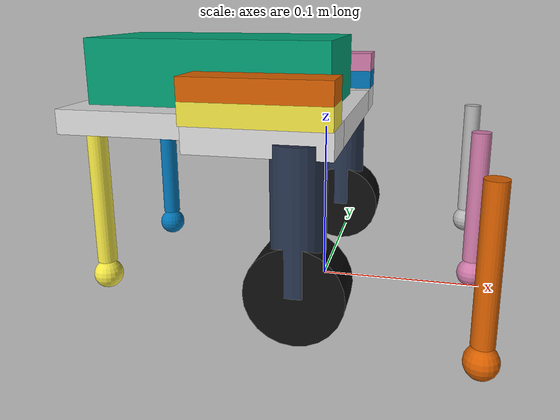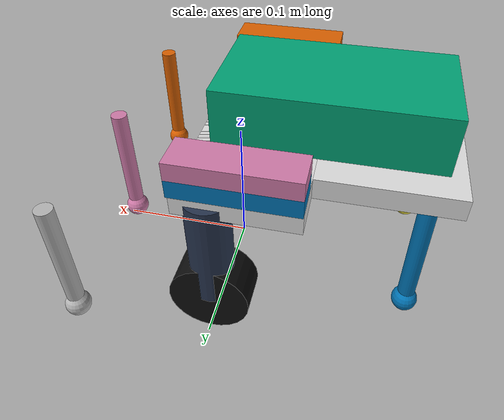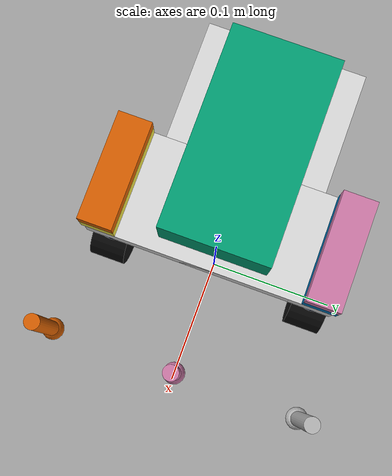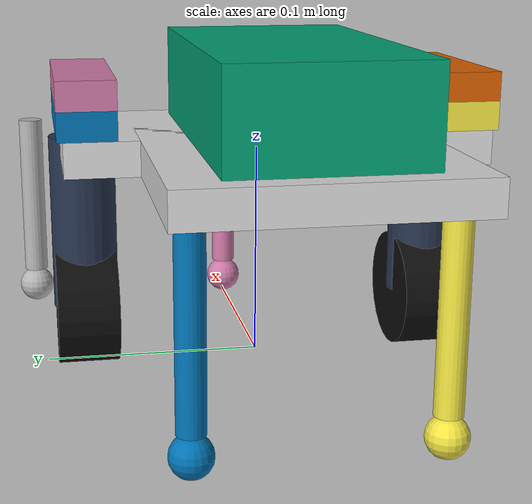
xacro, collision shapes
<?xml version="1.0"?>
<robot name="swerve_robot" xmlns:xacro="http://www.ros.org/wiki/xacro">

  <xacro:include filename="$(find swerve_robot_description)/urdf/modulo_swerve.xacro" />
  <xacro:include filename="$(find swerve_robot_description)/urdf/swerve_robot.gazebo.xacro" />

  <!-- Medidas del prototipo (en metros) -->
  <xacro:property name="track_width" value="0.163" />          <!-- distancia entre ejes de dirección -->
  <xacro:property name="wheelbase" value="0.131" />            <!-- distancia del origen a los apoyos traseros -->
  <xacro:property name="separacion_balines" value="0.10" />    <!-- distancia entre apoyos traseros -->
  <xacro:property name="radio_rueda" value="0.0275" />
  <!-- Distancia vertical del pivote de dirección al eje de la rueda.
       Se obtuvo de la altura mesa-engranaje de 56 dientes (10.8 cm) menos
       el radio de la rueda. -->
  <xacro:property name="alto_modulo" value="0.0805" />

  <!-- Los apoyos delanteros solo existen en el prototipo, se agregaron para
       que el chasis no se inclinara hacia adelante. No forman parte de la
       plataforma final. -->
  <xacro:arg name="balines_delanteros" default="true" />
  <xacro:property name="balines_del_x" value="0.095" />        <!-- adelante del origen -->
  <xacro:property name="balines_del_y" value="0.1045" />       <!-- track_width/2 + 0.023 -->

  <xacro:arg name="usar_mallas" default="true" />
  <xacro:property name="ruta_mallas" value="file://$(find swerve_robot_description)/meshes" />

  <!-- Chasis. Las dimensiones son aproximadas y la masa corresponde solo a
       la estructura, porque el bloque de control y los motores se modelan
       aparte. -->
  <xacro:property name="chasis_alto" value="0.015" />
  <xacro:property name="chasis_largo" value="${wheelbase + 0.04}" />
  <xacro:property name="chasis_ancho" value="${track_width + 0.02}" />
  <xacro:property name="chasis_cabeza_largo" value="0.08" />   <!-- parte ancha delantera, cubre el largo del motor -->
  <xacro:property name="chasis_columna_ancho" value="0.12" />  <!-- parte angosta trasera, llega hasta los apoyos -->
  <xacro:property name="masa_chasis" value="0.12" />

  <!-- Masas de los componentes según el catálogo del fabricante -->
  <xacro:property name="masa_ev3" value="0.215" />             <!-- bloque de control -->
  <xacro:property name="masa_motor" value="0.085" />           <!-- cada uno de los 4 motores -->

  <xacro:property name="radio_balin" value="0.009" />
  <xacro:property name="masa_balin" value="0.024" />
  <xacro:property name="mu_balin" value="0.01" />

  <link name="base_footprint" />

  <joint name="base_footprint_joint" type="fixed">
    <parent link="base_footprint" />
    <child link="base_link" />
    <origin xyz="0 0 ${radio_rueda + alto_modulo}" rpy="0 0 0" />
  </joint>

  <!-- Chasis en forma de T. Con mallas, chasis.dae incluye la estructura,
       el bloque de control, los motores y los apoyos traseros. -->
  <link name="base_link">
    <xacro:if value="$(arg usar_mallas)">
      <visual>
        <geometry>
          <mesh filename="${ruta_mallas}/chasis.dae" />
        </geometry>
        <material name="gris_claro_chasis">
          <color rgba="0.85 0.85 0.85 1.0" />
        </material>
      </visual>
      <xacro:if value="$(arg balines_delanteros)">
        <visual>
          <geometry>
            <mesh filename="${ruta_mallas}/apoyos.dae" />
          </geometry>
          <material name="gris_balin">
            <color rgba="0.4 0.4 0.4 1.0" />
          </material>
        </visual>
      </xacro:if>
    </xacro:if>

    <!-- Parte ancha delantera -->
    <xacro:unless value="$(arg usar_mallas)">
      <visual>
        <origin xyz="${0.02 - chasis_cabeza_largo/2} 0 0" rpy="0 0 0" />
        <geometry>
          <box size="${chasis_cabeza_largo} ${chasis_ancho} ${chasis_alto}" />
        </geometry>
        <material name="azul_chasis">
          <color rgba="0.3 0.4 0.55 1.0" />
        </material>
      </visual>
    </xacro:unless>
    <collision>
      <origin xyz="${0.02 - chasis_cabeza_largo/2} 0 0" rpy="0 0 0" />
      <geometry>
        <box size="${chasis_cabeza_largo} ${chasis_ancho} ${chasis_alto}" />
      </geometry>
    </collision>

    <!-- Parte angosta trasera -->
    <xacro:unless value="$(arg usar_mallas)">
      <visual>
        <origin xyz="${-wheelbase/2} 0 0" rpy="0 0 0" />
        <geometry>
          <box size="${chasis_largo} ${chasis_columna_ancho} ${chasis_alto}" />
        </geometry>
        <material name="azul_chasis">
          <color rgba="0.3 0.4 0.55 1.0" />
        </material>
      </visual>
    </xacro:unless>
    <collision>
      <origin xyz="${-wheelbase/2} 0 0" rpy="0 0 0" />
      <geometry>
        <box size="${chasis_largo} ${chasis_columna_ancho} ${chasis_alto}" />
      </geometry>
    </collision>

    <!-- Inercia aproximada con el rectángulo que envuelve la T -->
    <inertial>
      <origin xyz="${-wheelbase/2} 0 0" rpy="0 0 0" />
      <mass value="${masa_chasis}" />
      <inertia
        ixx="${masa_chasis/12.0 * (chasis_ancho*chasis_ancho + chasis_alto*chasis_alto)}"
        iyy="${masa_chasis/12.0 * (chasis_largo*chasis_largo + chasis_alto*chasis_alto)}"
        izz="${masa_chasis/12.0 * (chasis_largo*chasis_largo + chasis_ancho*chasis_ancho)}"
        ixy="0" ixz="0" iyz="0" />
    </inertial>
  </link>

  <!-- Bloque de control, apoyado sobre el chasis. Dimensiones y posición
       aproximadas. -->
  <link name="ev3_link">
    <xacro:unless value="$(arg usar_mallas)">
      <visual>
        <geometry>
          <box size="0.15 0.08 0.04" />
        </geometry>
        <material name="blanco_ev3">
          <color rgba="0.92 0.92 0.85 1.0" />
        </material>
      </visual>
    </xacro:unless>
    <collision>
      <geometry>
        <box size="0.15 0.08 0.04" />
      </geometry>
    </collision>
    <inertial>
      <mass value="${masa_ev3}" />
      <inertia
        ixx="${masa_ev3/12.0 * (0.08*0.08 + 0.04*0.04)}"
        iyy="${masa_ev3/12.0 * (0.15*0.15 + 0.04*0.04)}"
        izz="${masa_ev3/12.0 * (0.15*0.15 + 0.08*0.08)}"
        ixy="0" ixz="0" iyz="0" />
    </inertial>
  </link>

  <joint name="ev3_joint" type="fixed">
    <parent link="base_link" />
    <child link="ev3_link" />
    <origin xyz="${-wheelbase/2} 0 ${chasis_alto/2 + 0.02}" rpy="0 0 0" />
  </joint>

  <xacro:property name="motor_largo" value="0.08" />
  <xacro:property name="motor_ancho" value="0.025" />
  <xacro:property name="motor_alto" value="0.0125" />
  <xacro:property name="motor_x_offset" value="-0.02" />       <!-- hacia el centro del chasis -->

  <xacro:macro name="motor_fijo" params="prefix xyz">
    <link name="${prefix}_link">
      <xacro:unless value="$(arg usar_mallas)">
        <visual>
          <geometry>
            <box size="${motor_largo} ${motor_ancho} ${motor_alto}" />
          </geometry>
          <material name="azul_blanco_motor">
            <color rgba="0.5 0.55 0.6 1.0" />
          </material>
        </visual>
      </xacro:unless>
      <collision>
        <geometry>
          <box size="${motor_largo} ${motor_ancho} ${motor_alto}" />
        </geometry>
      </collision>
      <inertial>
        <mass value="${masa_motor}" />
        <inertia ixx="0.00001" ixy="0" ixz="0" iyy="0.00001" iyz="0" izz="0.00001" />
      </inertial>
    </link>
    <joint name="${prefix}_joint" type="fixed">
      <parent link="base_link" />
      <child link="${prefix}_link" />
      <origin xyz="${xyz}" rpy="0 0 0" />
    </joint>
  </xacro:macro>

  <xacro:motor_fijo prefix="der_motor_direccion" xyz="${motor_x_offset} ${-track_width/2} ${chasis_alto/2+motor_alto/2}" />
  <xacro:motor_fijo prefix="izq_motor_direccion" xyz="${motor_x_offset} ${track_width/2}  ${chasis_alto/2+motor_alto/2}" />
  <xacro:motor_fijo prefix="der_motor_traccion"  xyz="${motor_x_offset} ${-track_width/2} ${chasis_alto/2+motor_alto/2+motor_alto}" />
  <xacro:motor_fijo prefix="izq_motor_traccion"  xyz="${motor_x_offset} ${track_width/2}  ${chasis_alto/2+motor_alto/2+motor_alto}" />

  <!-- Módulos swerve, uno a cada lado del origen -->
  <xacro:modulo_swerve prefix="der" reflect="1" parent="base_link" radio_rueda="${radio_rueda}" alto_modulo="${alto_modulo}"
                       malla_pivote="pivote_derecho.dae" malla_rueda="rueda_derecha.dae">
    <origin xyz="0 ${-track_width/2} 0" rpy="0 0 0" />
  </xacro:modulo_swerve>

  <xacro:modulo_swerve prefix="izq" reflect="-1" parent="base_link" radio_rueda="${radio_rueda}" alto_modulo="${alto_modulo}"
                       malla_pivote="pivote_izquierdo.dae" malla_rueda="rueda_izquierda.dae">
    <origin xyz="0 ${track_width/2} 0" rpy="0 0 0" />
  </xacro:modulo_swerve>

  <!-- Apoyo pasivo: esfera en contacto con el piso y una pata que la une
       con la cara inferior del chasis. No participa en la cinemática, solo
       sostiene el chasis. -->
  <xacro:macro name="balin_pasivo" params="prefix xyz">
    <xacro:property name="pata_radio" value="0.006" />
    <xacro:property name="pata_largo" value="${radio_rueda + alto_modulo - chasis_alto/2 - 2*radio_balin}" />

    <link name="${prefix}_balin_link">
      <xacro:unless value="$(arg usar_mallas)">
        <visual>
          <geometry>
            <sphere radius="${radio_balin}" />
          </geometry>
          <material name="gris_balin">
            <color rgba="0.4 0.4 0.4 1.0" />
          </material>
        </visual>
      </xacro:unless>
      <collision>
        <geometry>
          <sphere radius="${radio_balin}" />
        </geometry>
      </collision>
      <xacro:unless value="$(arg usar_mallas)">
        <visual>
          <origin xyz="0 0 ${radio_balin + pata_largo/2}" rpy="0 0 0" />
          <geometry>
            <cylinder radius="${pata_radio}" length="${pata_largo}" />
          </geometry>
          <material name="gris_balin">
            <color rgba="0.4 0.4 0.4 1.0" />
          </material>
        </visual>
      </xacro:unless>
      <collision>
        <origin xyz="0 0 ${radio_balin + pata_largo/2}" rpy="0 0 0" />
        <geometry>
          <cylinder radius="${pata_radio}" length="${pata_largo}" />
        </geometry>
      </collision>
      <!-- Esfera maciza: I = 2/5 m r^2 -->
      <inertial>
        <mass value="${masa_balin}" />
        <inertia ixx="${0.4*masa_balin*radio_balin*radio_balin}" ixy="0" ixz="0"
                 iyy="${0.4*masa_balin*radio_balin*radio_balin}" iyz="0"
                 izz="${0.4*masa_balin*radio_balin*radio_balin}" />
      </inertial>
    </link>
    <gazebo reference="${prefix}_balin_link">
      <mu1>${mu_balin}</mu1>
      <mu2>${mu_balin}</mu2>
    </gazebo>
    <joint name="${prefix}_balin_joint" type="fixed">
      <parent link="base_link" />
      <child link="${prefix}_balin_link" />
      <origin xyz="${xyz}" rpy="0 0 0" />
    </joint>
  </xacro:macro>

  <!-- Apoyos traseros -->
  <xacro:balin_pasivo prefix="balin_der" xyz="${-wheelbase} ${-separacion_balines/2} ${-(radio_rueda+alto_modulo)+radio_balin}" />
  <xacro:balin_pasivo prefix="balin_izq" xyz="${-wheelbase} ${separacion_balines/2} ${-(radio_rueda+alto_modulo)+radio_balin}" />

  <!-- Apoyos delanteros (opcionales) -->
  <xacro:if value="$(arg balines_delanteros)">
    <xacro:balin_pasivo prefix="balin_del_der" xyz="${balines_del_x} ${-balines_del_y} ${-(radio_rueda+alto_modulo)+radio_balin}" />
    <xacro:balin_pasivo prefix="balin_del_centro" xyz="${balines_del_x} 0 ${-(radio_rueda+alto_modulo)+radio_balin}" />
    <xacro:balin_pasivo prefix="balin_del_izq" xyz="${balines_del_x} ${balines_del_y} ${-(radio_rueda+alto_modulo)+radio_balin}" />
  </xacro:if>

</robot>

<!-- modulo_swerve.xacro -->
<robot xmlns:xacro="http://www.ros.org/wiki/xacro">

  <xacro:macro name="modulo_swerve" params="prefix reflect parent radio_rueda:=0.0275 alto_modulo:=0.0805 malla_pivote:='' malla_rueda:='' *origin">

    <xacro:property name="ancho_rueda" value="0.028" />
    <xacro:property name="radio_eje_direccion" value="0.015" />   <!-- aproximado -->

    <xacro:property name="masa_rueda" value="0.023" />
    <xacro:property name="masa_engranajes_eje" value="0.015" />
    <xacro:property name="masa_steer_link" value="${masa_engranajes_eje}" />

    <!-- Se supone que el eje de dirección pasa por el centro de la rueda
         (sin desfase lateral), como en el diseño coaxial del módulo. -->

    <!-- Pivote de dirección. Sin mallas se dibuja como un cilindro que
         baja desde el punto de unión con el chasis hasta la rueda. -->
    <link name="${prefix}_steer_link">
      <xacro:if value="$(arg usar_mallas)">
        <visual>
          <geometry>
            <mesh filename="${ruta_mallas}/${malla_pivote}" />
          </geometry>
          <material name="negro_azulado_pivote">
            <color rgba="0.15 0.2 0.3 1.0" />
          </material>
        </visual>
      </xacro:if>
      <xacro:unless value="$(arg usar_mallas)">
        <visual>
          <origin xyz="0 0 -${alto_modulo/2}" rpy="0 0 0" />
          <geometry>
            <cylinder radius="${radio_eje_direccion}" length="${alto_modulo}" />
          </geometry>
          <material name="negro_azulado_pivote">
            <color rgba="0.15 0.2 0.3 1.0" />
          </material>
        </visual>
      </xacro:unless>
      <collision>
        <origin xyz="0 0 -${alto_modulo/2}" rpy="0 0 0" />
        <geometry>
          <cylinder radius="${radio_eje_direccion}" length="${alto_modulo}" />
        </geometry>
      </collision>
      <inertial>
        <mass value="${masa_steer_link}" />
        <inertia ixx="0.000005" ixy="0" ixz="0" iyy="0.000005" iyz="0" izz="0.000003" />
      </inertial>
    </link>

    <!-- Junta de dirección. Es continua porque el módulo con engranajes
         no tiene tope mecánico de giro. El amortiguamiento es un valor
         aproximado. -->
    <joint name="${prefix}_steer_joint" type="continuous">
      <parent link="${parent}" />
      <child link="${prefix}_steer_link" />
      <xacro:insert_block name="origin" />
      <axis xyz="0 0 1" />
      <dynamics damping="0.01" friction="0.0" />
    </joint>

    <!-- Rueda de tracción. La malla ya viene orientada con el eje de giro
         en Y, por eso no lleva la rotación que sí necesita el cilindro. -->
    <link name="${prefix}_wheel_link">
      <xacro:if value="$(arg usar_mallas)">
        <visual>
          <geometry>
            <mesh filename="${ruta_mallas}/${malla_rueda}" />
          </geometry>
          <material name="negro">
            <color rgba="0.05 0.05 0.05 1.0" />
          </material>
        </visual>
      </xacro:if>
      <xacro:unless value="$(arg usar_mallas)">
        <visual>
          <origin xyz="0 0 0" rpy="1.5708 0 0" />
          <geometry>
            <cylinder radius="${radio_rueda}" length="${ancho_rueda}" />
          </geometry>
          <material name="negro">
            <color rgba="0.05 0.05 0.05 1.0" />
          </material>
        </visual>
      </xacro:unless>
      <collision>
        <origin xyz="0 0 0" rpy="1.5708 0 0" />
        <geometry>
          <cylinder radius="${radio_rueda}" length="${ancho_rueda}" />
        </geometry>
      </collision>
      <!-- Cilindro macizo que gira sobre Y:
           iyy = m r^2 / 2,  ixx = izz = m (3 r^2 + h^2) / 12 -->
      <inertial>
        <mass value="${masa_rueda}" />
        <inertia ixx="${masa_rueda*(3*radio_rueda*radio_rueda + ancho_rueda*ancho_rueda)/12}" ixy="0" ixz="0"
                 iyy="${masa_rueda*radio_rueda*radio_rueda/2}" iyz="0"
                 izz="${masa_rueda*(3*radio_rueda*radio_rueda + ancho_rueda*ancho_rueda)/12}" />
      </inertial>
    </link>

    <!-- Junta de tracción, a alto_modulo por debajo del pivote. El
         amortiguamiento es un valor aproximado. -->
    <joint name="${prefix}_wheel_joint" type="continuous">
      <parent link="${prefix}_steer_link" />
      <child link="${prefix}_wheel_link" />
      <origin xyz="0 0 -${alto_modulo}" rpy="0 0 0" />
      <axis xyz="0 1 0" />
      <dynamics damping="0.001" friction="0.0" />
    </joint>

  </xacro:macro>
</robot>
